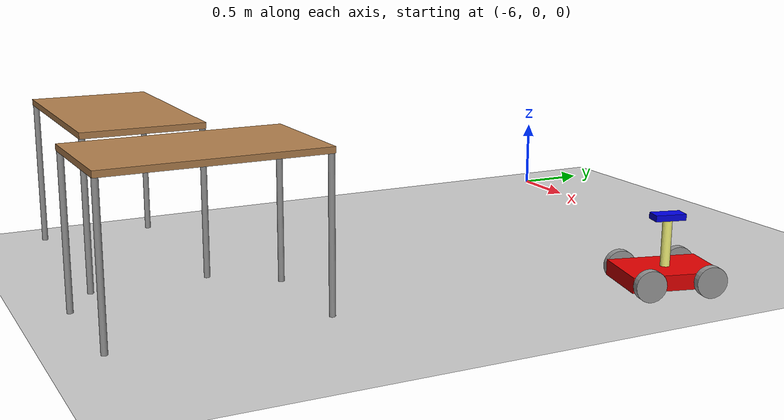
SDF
<sdf version="1.6">
 <world name="default">
  <model name="ground_plane">
   <static>1</static>
   <link name="link">
    <collision name="collision">
     <geometry><plane><normal>0 0 1</normal><size>100 100</size></plane></geometry>
     <surface><friction><ode><mu>100</mu><mu2>50</mu2></ode></friction></surface>
    </collision>
    <visual name="visual">
     <cast_shadows>0</cast_shadows>
     <geometry><plane><normal>0 0 1</normal><size>100 100</size></plane></geometry>
     <material>
      <script><uri>file://media/materials/scripts/gazebo.material</uri><name>Gazebo/Grey</name></script>
     </material>
    </visual>
   </link>
  </model>
  <model name="table_0_clone_clone_clone_0_clone_clone">
   <static>0</static>
   <link name="link">
    <collision name="surface">
     <pose>0 0 1 0 -0 0</pose>
     <geometry><box><size>1.5 0.8 0.03</size></box></geometry>
     <surface><friction><ode><mu>0.6</mu><mu2>0.6</mu2></ode></friction></surface>
    </collision>
    <visual name="visual1">
     <pose>0 0 1 0 -0 0</pose>
     <geometry><box><size>1.4 0.8 0.04</size></box></geometry>
     <material>
      <script><uri>file://media/materials/scripts/gazebo.material</uri><name>Gazebo/Wood</name></script>
     </material>
    </visual>
    <collision name="front_left_leg">
     <pose>0.68 0.38 0.5 0 -0 0</pose>
     <geometry><cylinder><radius>0.02</radius><length>1</length></cylinder></geometry>
    </collision>
    <visual name="front_left_leg">
     <pose>0.68 0.38 0.5 0 -0 0</pose>
     <geometry><cylinder><radius>0.02</radius><length>1</length></cylinder></geometry>
     <material>
      <script><uri>file://media/materials/scripts/gazebo.material</uri><name>Gazebo/Grey</name></script>
     </material>
    </visual>
    <collision name="front_right_leg">
     <pose>0.68 -0.38 0.5 0 -0 0</pose>
     <geometry><cylinder><radius>0.02</radius><length>1</length></cylinder></geometry>
    </collision>
    <visual name="front_right_leg">
     <pose>0.68 -0.38 0.5 0 -0 0</pose>
     <geometry><cylinder><radius>0.02</radius><length>1</length></cylinder></geometry>
     <material>
      <script><uri>file://media/materials/scripts/gazebo.material</uri><name>Gazebo/Grey</name></script>
     </material>
    </visual>
    <collision name="back_right_leg">
     <pose>-0.68 -0.38 0.5 0 -0 0</pose>
     <geometry><cylinder><radius>0.02</radius><length>1</length></cylinder></geometry>
    </collision>
    <visual name="back_right_leg">
     <pose>-0.68 -0.38 0.5 0 -0 0</pose>
     <geometry><cylinder><radius>0.02</radius><length>1</length></cylinder></geometry>
     <material>
      <script><uri>file://media/materials/scripts/gazebo.material</uri><name>Gazebo/Grey</name></script>
     </material>
    </visual>
    <collision name="back_left_leg">
     <pose>-0.68 0.38 0.5 0 -0 0</pose>
     <geometry><cylinder><radius>0.02</radius><length>1</length></cylinder></geometry>
    </collision>
    <visual name="back_left_leg">
     <pose>-0.68 0.38 0.5 0 -0 0</pose>
     <geometry><cylinder><radius>0.02</radius><length>1</length></cylinder></geometry>
     <material>
      <script><uri>file://media/materials/scripts/gazebo.material</uri><name>Gazebo/Grey</name></script>
     </material>
    </visual>
    <inertial>
     <inertia><ixx>1</ixx><ixy>0</ixy><ixz>0</ixz><iyy>1</iyy><iyz>0</iyz><izz>1</izz></inertia>
     <mass>1</mass>
    </inertial>
   </link>
   <pose>-3.9349 -3.66964 -9e-06 0 -1e-06 -1.55435</pose>
  </model>
  <model name="table_0_clone_clone_clone_clone_0">
   <static>0</static>
   <link name="link">
    <collision name="surface">
     <pose>0 0 1 0 -0 0</pose>
     <geometry><box><size>1.5 0.8 0.03</size></box></geometry>
     <surface><friction><ode><mu>0.6</mu><mu2>0.6</mu2></ode></friction></surface>
    </collision>
    <visual name="visual1">
     <pose>0 0 1 0 -0 0</pose>
     <geometry><box><size>1.4 0.8 0.04</size></box></geometry>
     <material>
      <script><uri>file://media/materials/scripts/gazebo.material</uri><name>Gazebo/Wood</name></script>
     </material>
    </visual>
    <collision name="front_left_leg">
     <pose>0.68 0.38 0.5 0 -0 0</pose>
     <geometry><cylinder><radius>0.02</radius><length>1</length></cylinder></geometry>
    </collision>
    <visual name="front_left_leg">
     <pose>0.68 0.38 0.5 0 -0 0</pose>
     <geometry><cylinder><radius>0.02</radius><length>1</length></cylinder></geometry>
     <material>
      <script><uri>file://media/materials/scripts/gazebo.material</uri><name>Gazebo/Grey</name></script>
     </material>
    </visual>
    <collision name="front_right_leg">
     <pose>0.68 -0.38 0.5 0 -0 0</pose>
     <geometry><cylinder><radius>0.02</radius><length>1</length></cylinder></geometry>
    </collision>
    <visual name="front_right_leg">
     <pose>0.68 -0.38 0.5 0 -0 0</pose>
     <geometry><cylinder><radius>0.02</radius><length>1</length></cylinder></geometry>
     <material>
      <script><uri>file://media/materials/scripts/gazebo.material</uri><name>Gazebo/Grey</name></script>
     </material>
    </visual>
    <collision name="back_right_leg">
     <pose>-0.68 -0.38 0.5 0 -0 0</pose>
     <geometry><cylinder><radius>0.02</radius><length>1</length></cylinder></geometry>
    </collision>
    <visual name="back_right_leg">
     <pose>-0.68 -0.38 0.5 0 -0 0</pose>
     <geometry><cylinder><radius>0.02</radius><length>1</length></cylinder></geometry>
     <material>
      <script><uri>file://media/materials/scripts/gazebo.material</uri><name>Gazebo/Grey</name></script>
     </material>
    </visual>
    <collision name="back_left_leg">
     <pose>-0.68 0.38 0.5 0 -0 0</pose>
     <geometry><cylinder><radius>0.02</radius><length>1</length></cylinder></geometry>
    </collision>
    <visual name="back_left_leg">
     <pose>-0.68 0.38 0.5 0 -0 0</pose>
     <geometry><cylinder><radius>0.02</radius><length>1</length></cylinder></geometry>
     <material>
      <script><uri>file://media/materials/scripts/gazebo.material</uri><name>Gazebo/Grey</name></script>
     </material>
    </visual>
    <inertial>
     <inertia><ixx>1</ixx><ixy>0</ixy><ixz>0</ixz><iyy>1</iyy><iyz>0</iyz><izz>1</izz></inertia>
     <mass>1</mass>
    </inertial>
   </link>
   <pose>-5.29449 -3.77784 -9e-06 0 -1e-06 0</pose>
  </model>
  <model name="MyInspectionRobot_clone">
   <link name="link_10">
    <pose>0 0 0.37 0 -0 0</pose>
    <inertial>
     <mass>1</mass>
     <inertia>
      <ixx>0.166667</ixx>
      <ixy>0</ixy>
      <ixz>0</ixz>
      <iyy>0.166667</iyy>
      <iyz>0</iyz>
      <izz>0.166667</izz>
     </inertia>
    </inertial>
    <visual name="visual">
     <geometry><box><size>0.2 0.1 0.04</size></box></geometry>
     <material>
      <lighting>1</lighting>
      <script><uri>file://media/materials/scripts/gazebo.material</uri><name>Gazebo/Grey</name></script>
      <ambient>0.3 0.3 0.3 1</ambient>
      <diffuse>0 0 0.9 1</diffuse>
      <specular>0.01 0.01 0.01 1</specular>
      <emissive>0 0 0 1</emissive>
      <shader type="vertex"><normal_map>__default__</normal_map></shader>
     </material>
    </visual>
    <collision name="collision">
     <geometry><box><size>0.2 0.1 0.04</size></box></geometry>
     <surface>
      <friction>
       <ode><mu>1</mu><mu2>1</mu2><fdir1>0 0 0</fdir1><slip1>0</slip1><slip2>0</slip2></ode>
       <torsional>
        <coefficient>1</coefficient>
        <patch_radius>0</patch_radius>
        <surface_radius>0</surface_radius>
        <use_patch_radius>1</use_patch_radius>
        <ode><slip>0</slip></ode>
       </torsional>
      </friction>
      <bounce><restitution_coefficient>0</restitution_coefficient><threshold>1e+06</threshold></bounce>
      <contact>
       <collide_without_contact>0</collide_without_contact>
       <collide_without_contact_bitmask>1</collide_without_contact_bitmask>
       <collide_bitmask>1</collide_bitmask>
       <ode>
        <soft_cfm>0</soft_cfm>
        <soft_erp>0.2</soft_erp>
        <kp>1e+13</kp>
        <kd>1</kd>
        <max_vel>0.01</max_vel>
        <min_depth>0</min_depth>
       </ode>
       <bullet>
        <split_impulse>1</split_impulse>
        <split_impulse_penetration_threshold>-0.01</split_impulse_penetration_threshold>
        <soft_cfm>0</soft_cfm>
        <soft_erp>0.2</soft_erp>
        <kp>1e+13</kp>
        <kd>1</kd>
       </bullet>
      </contact>
     </surface>
    </collision>
   </link>
   <link name="link_6">
    <inertial>
     <mass>1</mass>
     <inertia>
      <ixx>0.166667</ixx>
      <ixy>0</ixy>
      <ixz>0</ixz>
      <iyy>0.166667</iyy>
      <iyz>0</iyz>
      <izz>0.166667</izz>
     </inertia>
    </inertial>
    <visual name="visual">
     <geometry><box><size>0.6 0.4 0.1</size></box></geometry>
     <material>
      <lighting>1</lighting>
      <script><uri>file://media/materials/scripts/gazebo.material</uri><name>Gazebo/Grey</name></script>
      <ambient>0.3 0.3 0.3 1</ambient>
      <diffuse>0.9 0 0 1</diffuse>
      <specular>0.01 0.01 0.01 1</specular>
      <emissive>0 0 0 1</emissive>
      <shader type="vertex"><normal_map>__default__</normal_map></shader>
     </material>
    </visual>
    <collision name="collision">
     <geometry><box><size>0.6 0.4 0.1</size></box></geometry>
     <surface>
      <friction>
       <ode><mu>1</mu><mu2>1</mu2><fdir1>0 0 0</fdir1><slip1>0</slip1><slip2>0</slip2></ode>
       <torsional>
        <coefficient>1</coefficient>
        <patch_radius>0</patch_radius>
        <surface_radius>0</surface_radius>
        <use_patch_radius>1</use_patch_radius>
        <ode><slip>0</slip></ode>
       </torsional>
      </friction>
      <bounce><restitution_coefficient>0</restitution_coefficient><threshold>1e+06</threshold></bounce>
      <contact>
       <collide_without_contact>0</collide_without_contact>
       <collide_without_contact_bitmask>1</collide_without_contact_bitmask>
       <collide_bitmask>1</collide_bitmask>
       <ode>
        <soft_cfm>0</soft_cfm>
        <soft_erp>0.2</soft_erp>
        <kp>1e+13</kp>
        <kd>1</kd>
        <max_vel>0.01</max_vel>
        <min_depth>0</min_depth>
       </ode>
       <bullet>
        <split_impulse>1</split_impulse>
        <split_impulse_penetration_threshold>-0.01</split_impulse_penetration_threshold>
        <soft_cfm>0</soft_cfm>
        <soft_erp>0.2</soft_erp>
        <kp>1e+13</kp>
        <kd>1</kd>
       </bullet>
      </contact>
     </surface>
    </collision>
   </link>
   <link name="link_8">
    <pose>-0.2 -0.22501 0 1.5707 -0 0</pose>
    <inertial>
     <mass>1</mass>
     <inertia><ixx>0.145833</ixx><ixy>0</ixy><ixz>0</ixz><iyy>0.145833</iyy><iyz>0</iyz><izz>0.125</izz></inertia>
    </inertial>
    <visual name="visual">
     <geometry><cylinder><radius>0.1</radius><length>0.05</length></cylinder></geometry>
     <material>
      <lighting>1</lighting>
      <script><uri>file://media/materials/scripts/gazebo.material</uri><name>Gazebo/Grey</name></script>
      <ambient>0.3 0.3 0.3 1</ambient>
      <diffuse>0 0 0 1</diffuse>
      <specular>0.01 0.01 0.01 1</specular>
      <emissive>0 0 0 1</emissive>
      <shader type="vertex"><normal_map>__default__</normal_map></shader>
     </material>
    </visual>
    <collision name="collision">
     <geometry><cylinder><radius>0.1</radius><length>0.05</length></cylinder></geometry>
     <surface>
      <friction>
       <ode><mu>1</mu><mu2>1</mu2><fdir1>0 0 0</fdir1><slip1>0</slip1><slip2>0</slip2></ode>
       <torsional>
        <coefficient>1</coefficient>
        <patch_radius>0</patch_radius>
        <surface_radius>0</surface_radius>
        <use_patch_radius>1</use_patch_radius>
        <ode><slip>0</slip></ode>
       </torsional>
      </friction>
      <bounce><restitution_coefficient>0</restitution_coefficient><threshold>1e+06</threshold></bounce>
      <contact>
       <collide_without_contact>0</collide_without_contact>
       <collide_without_contact_bitmask>1</collide_without_contact_bitmask>
       <collide_bitmask>1</collide_bitmask>
       <ode>
        <soft_cfm>0</soft_cfm>
        <soft_erp>0.2</soft_erp>
        <kp>1e+13</kp>
        <kd>1</kd>
        <max_vel>0.01</max_vel>
        <min_depth>0</min_depth>
       </ode>
       <bullet>
        <split_impulse>1</split_impulse>
        <split_impulse_penetration_threshold>-0.01</split_impulse_penetration_threshold>
        <soft_cfm>0</soft_cfm>
        <soft_erp>0.2</soft_erp>
        <kp>1e+13</kp>
        <kd>1</kd>
       </bullet>
      </contact>
     </surface>
    </collision>
   </link>
   <link name="link_8_clone">
    <pose>-0.2 0.22501 0 1.5707 -0 0</pose>
    <inertial>
     <mass>1</mass>
     <inertia><ixx>0.145833</ixx><ixy>0</ixy><ixz>0</ixz><iyy>0.145833</iyy><iyz>0</iyz><izz>0.125</izz></inertia>
    </inertial>
    <visual name="visual">
     <geometry><cylinder><radius>0.1</radius><length>0.05</length></cylinder></geometry>
     <material>
      <lighting>1</lighting>
      <script><uri>file://media/materials/scripts/gazebo.material</uri><name>Gazebo/Grey</name></script>
      <ambient>0.3 0.3 0.3 1</ambient>
      <diffuse>0 0 0 1</diffuse>
      <specular>0.01 0.01 0.01 1</specular>
      <emissive>0 0 0 1</emissive>
      <shader type="vertex"><normal_map>__default__</normal_map></shader>
     </material>
    </visual>
    <collision name="collision">
     <geometry><cylinder><radius>0.1</radius><length>0.05</length></cylinder></geometry>
     <surface>
      <friction>
       <ode><mu>1</mu><mu2>1</mu2><fdir1>0 0 0</fdir1><slip1>0</slip1><slip2>0</slip2></ode>
       <torsional>
        <coefficient>1</coefficient>
        <patch_radius>0</patch_radius>
        <surface_radius>0</surface_radius>
        <use_patch_radius>1</use_patch_radius>
        <ode><slip>0</slip></ode>
       </torsional>
      </friction>
      <bounce><restitution_coefficient>0</restitution_coefficient><threshold>1e+06</threshold></bounce>
      <contact>
       <collide_without_contact>0</collide_without_contact>
       <collide_without_contact_bitmask>1</collide_without_contact_bitmask>
       <collide_bitmask>1</collide_bitmask>
       <ode>
        <soft_cfm>0</soft_cfm>
        <soft_erp>0.2</soft_erp>
        <kp>1e+13</kp>
        <kd>1</kd>
        <max_vel>0.01</max_vel>
        <min_depth>0</min_depth>
       </ode>
       <bullet>
        <split_impulse>1</split_impulse>
        <split_impulse_penetration_threshold>-0.01</split_impulse_penetration_threshold>
        <soft_cfm>0</soft_cfm>
        <soft_erp>0.2</soft_erp>
        <kp>1e+13</kp>
        <kd>1</kd>
       </bullet>
      </contact>
     </surface>
    </collision>
   </link>
   <link name="link_8_clone_clone">
    <pose>0.2 -0.22501 0 1.5707 -0 0</pose>
    <inertial>
     <mass>1</mass>
     <inertia><ixx>0.145833</ixx><ixy>0</ixy><ixz>0</ixz><iyy>0.145833</iyy><iyz>0</iyz><izz>0.125</izz></inertia>
    </inertial>
    <visual name="visual">
     <geometry><cylinder><radius>0.1</radius><length>0.05</length></cylinder></geometry>
     <material>
      <lighting>1</lighting>
      <script><uri>file://media/materials/scripts/gazebo.material</uri><name>Gazebo/Grey</name></script>
      <ambient>0.3 0.3 0.3 1</ambient>
      <diffuse>0 0 0 1</diffuse>
      <specular>0.01 0.01 0.01 1</specular>
      <emissive>0 0 0 1</emissive>
      <shader type="vertex"><normal_map>__default__</normal_map></shader>
     </material>
    </visual>
    <collision name="collision">
     <geometry><cylinder><radius>0.1</radius><length>0.05</length></cylinder></geometry>
     <surface>
      <friction>
       <ode><mu>1</mu><mu2>1</mu2><fdir1>0 0 0</fdir1><slip1>0</slip1><slip2>0</slip2></ode>
       <torsional>
        <coefficient>1</coefficient>
        <patch_radius>0</patch_radius>
        <surface_radius>0</surface_radius>
        <use_patch_radius>1</use_patch_radius>
        <ode><slip>0</slip></ode>
       </torsional>
      </friction>
      <bounce><restitution_coefficient>0</restitution_coefficient><threshold>1e+06</threshold></bounce>
      <contact>
       <collide_without_contact>0</collide_without_contact>
       <collide_without_contact_bitmask>1</collide_without_contact_bitmask>
       <collide_bitmask>1</collide_bitmask>
       <ode>
        <soft_cfm>0</soft_cfm>
        <soft_erp>0.2</soft_erp>
        <kp>1e+13</kp>
        <kd>1</kd>
        <max_vel>0.01</max_vel>
        <min_depth>0</min_depth>
       </ode>
       <bullet>
        <split_impulse>1</split_impulse>
        <split_impulse_penetration_threshold>-0.01</split_impulse_penetration_threshold>
        <soft_cfm>0</soft_cfm>
        <soft_erp>0.2</soft_erp>
        <kp>1e+13</kp>
        <kd>1</kd>
       </bullet>
      </contact>
     </surface>
    </collision>
   </link>
   <link name="link_8_clone_clone_clone">
    <pose>0.2 0.22501 0 1.5707 -0 0</pose>
    <inertial>
     <mass>1</mass>
     <inertia><ixx>0.145833</ixx><ixy>0</ixy><ixz>0</ixz><iyy>0.145833</iyy><iyz>0</iyz><izz>0.125</izz></inertia>
    </inertial>
    <visual name="visual">
     <geometry><cylinder><radius>0.1</radius><length>0.05</length></cylinder></geometry>
     <material>
      <lighting>1</lighting>
      <script><uri>file://media/materials/scripts/gazebo.material</uri><name>Gazebo/Grey</name></script>
      <ambient>0.3 0.3 0.3 1</ambient>
      <diffuse>0 0 0 1</diffuse>
      <specular>0.01 0.01 0.01 1</specular>
      <emissive>0 0 0 1</emissive>
      <shader type="vertex"><normal_map>__default__</normal_map></shader>
     </material>
    </visual>
    <collision name="collision">
     <geometry><cylinder><radius>0.1</radius><length>0.05</length></cylinder></geometry>
     <surface>
      <friction>
       <ode><mu>1</mu><mu2>1</mu2><fdir1>0 0 0</fdir1><slip1>0</slip1><slip2>0</slip2></ode>
       <torsional>
        <coefficient>1</coefficient>
        <patch_radius>0</patch_radius>
        <surface_radius>0</surface_radius>
        <use_patch_radius>1</use_patch_radius>
        <ode><slip>0</slip></ode>
       </torsional>
      </friction>
      <bounce><restitution_coefficient>0</restitution_coefficient><threshold>1e+06</threshold></bounce>
      <contact>
       <collide_without_contact>0</collide_without_contact>
       <collide_without_contact_bitmask>1</collide_without_contact_bitmask>
       <collide_bitmask>1</collide_bitmask>
       <ode>
        <soft_cfm>0</soft_cfm>
        <soft_erp>0.2</soft_erp>
        <kp>1e+13</kp>
        <kd>1</kd>
        <max_vel>0.01</max_vel>
        <min_depth>0</min_depth>
       </ode>
       <bullet>
        <split_impulse>1</split_impulse>
        <split_impulse_penetration_threshold>-0.01</split_impulse_penetration_threshold>
        <soft_cfm>0</soft_cfm>
        <soft_erp>0.2</soft_erp>
        <kp>1e+13</kp>
        <kd>1</kd>
       </bullet>
      </contact>
     </surface>
    </collision>
   </link>
   <link name="link_9">
    <pose>0 0 0.2 0 -0 0</pose>
    <inertial>
     <mass>1</mass>
     <inertia><ixx>0.145833</ixx><ixy>0</ixy><ixz>0</ixz><iyy>0.145833</iyy><iyz>0</iyz><izz>0.125</izz></inertia>
    </inertial>
    <visual name="visual">
     <geometry><cylinder><radius>0.03</radius><length>0.3</length></cylinder></geometry>
     <material>
      <lighting>1</lighting>
      <script><uri>file://media/materials/scripts/gazebo.material</uri><name>Gazebo/Grey</name></script>
      <ambient>0.3 0.3 0.3 1</ambient>
      <diffuse>1 1 0.5 1</diffuse>
      <specular>0.01 0.01 0.01 1</specular>
      <emissive>0 0 0 1</emissive>
      <shader type="vertex"><normal_map>__default__</normal_map></shader>
     </material>
    </visual>
    <collision name="collision">
     <geometry><cylinder><radius>0.03</radius><length>0.3</length></cylinder></geometry>
     <surface>
      <friction>
       <ode><mu>1</mu><mu2>1</mu2><fdir1>0 0 0</fdir1><slip1>0</slip1><slip2>0</slip2></ode>
       <torsional>
        <coefficient>1</coefficient>
        <patch_radius>0</patch_radius>
        <surface_radius>0</surface_radius>
        <use_patch_radius>1</use_patch_radius>
        <ode><slip>0</slip></ode>
       </torsional>
      </friction>
      <bounce><restitution_coefficient>0</restitution_coefficient><threshold>1e+06</threshold></bounce>
      <contact>
       <collide_without_contact>0</collide_without_contact>
       <collide_without_contact_bitmask>1</collide_without_contact_bitmask>
       <collide_bitmask>1</collide_bitmask>
       <ode>
        <soft_cfm>0</soft_cfm>
        <soft_erp>0.2</soft_erp>
        <kp>1e+13</kp>
        <kd>1</kd>
        <max_vel>0.01</max_vel>
        <min_depth>0</min_depth>
       </ode>
       <bullet>
        <split_impulse>1</split_impulse>
        <split_impulse_penetration_threshold>-0.01</split_impulse_penetration_threshold>
        <soft_cfm>0</soft_cfm>
        <soft_erp>0.2</soft_erp>
        <kp>1e+13</kp>
        <kd>1</kd>
       </bullet>
      </contact>
     </surface>
    </collision>
   </link>
   <joint name="link_6_JOINT_1" type="revolute">
    <parent>link_6</parent>
    <child>link_8</child>
    <axis>
     <xyz>0 0 1</xyz>
     <use_parent_model_frame>0</use_parent_model_frame>
     <limit>
      <lower>-1.79769e+308</lower>
      <upper>1.79769e+308</upper>
      <effort>-1</effort>
      <velocity>-1</velocity>
     </limit>
     <dynamics>
      <spring_reference>0</spring_reference>
      <spring_stiffness>0</spring_stiffness>
      <damping>0</damping>
     </dynamics>
    </axis>
    <physics>
     <ode><limit><cfm>0</cfm><erp>0.2</erp></limit><suspension><cfm>0</cfm><erp>0.2</erp></suspension></ode>
    </physics>
   </joint>
   <joint name="link_6_JOINT_2" type="revolute">
    <parent>link_6</parent>
    <child>link_8_clone</child>
    <axis>
     <xyz>0 0 1</xyz>
     <use_parent_model_frame>0</use_parent_model_frame>
     <limit>
      <lower>-1.79769e+308</lower>
      <upper>1.79769e+308</upper>
      <effort>-1</effort>
      <velocity>-1</velocity>
     </limit>
     <dynamics>
      <spring_reference>0</spring_reference>
      <spring_stiffness>0</spring_stiffness>
      <damping>0</damping>
     </dynamics>
    </axis>
    <physics>
     <ode><limit><cfm>0</cfm><erp>0.2</erp></limit><suspension><cfm>0</cfm><erp>0.2</erp></suspension></ode>
    </physics>
   </joint>
   <joint name="link_6_JOINT_3" type="revolute">
    <parent>link_6</parent>
    <child>link_8_clone_clone</child>
    <axis>
     <xyz>0 0 1</xyz>
     <use_parent_model_frame>0</use_parent_model_frame>
     <limit>
      <lower>-1.79769e+308</lower>
      <upper>1.79769e+308</upper>
      <effort>-1</effort>
      <velocity>-1</velocity>
     </limit>
     <dynamics>
      <spring_reference>0</spring_reference>
      <spring_stiffness>0</spring_stiffness>
      <damping>0</damping>
     </dynamics>
    </axis>
    <physics>
     <ode><limit><cfm>0</cfm><erp>0.2</erp></limit><suspension><cfm>0</cfm><erp>0.2</erp></suspension></ode>
    </physics>
   </joint>
   <joint name="link_6_JOINT_4" type="revolute">
    <parent>link_6</parent>
    <child>link_8_clone_clone_clone</child>
    <axis>
     <xyz>0 0 1</xyz>
     <use_parent_model_frame>0</use_parent_model_frame>
     <limit>
      <lower>-1.79769e+308</lower>
      <upper>1.79769e+308</upper>
      <effort>-1</effort>
      <velocity>-1</velocity>
     </limit>
     <dynamics>
      <spring_reference>0</spring_reference>
      <spring_stiffness>0</spring_stiffness>
      <damping>0</damping>
     </dynamics>
    </axis>
    <physics>
     <ode><limit><cfm>0</cfm><erp>0.2</erp></limit><suspension><cfm>0</cfm><erp>0.2</erp></suspension></ode>
    </physics>
   </joint>
   <joint name="link_6_JOINT_5" type="revolute">
    <parent>link_6</parent>
    <child>link_9</child>
    <pose>0 0 -0.15 0 -0 0</pose>
    <axis>
     <xyz>0 0 1</xyz>
     <use_parent_model_frame>0</use_parent_model_frame>
     <limit>
      <lower>-1.79769e+308</lower>
      <upper>1.79769e+308</upper>
      <effort>-1</effort>
      <velocity>-1</velocity>
     </limit>
     <dynamics>
      <spring_reference>0</spring_reference>
      <spring_stiffness>0</spring_stiffness>
      <damping>0</damping>
     </dynamics>
    </axis>
    <physics>
     <ode><limit><cfm>0</cfm><erp>0.2</erp></limit><suspension><cfm>0</cfm><erp>0.2</erp></suspension></ode>
    </physics>
   </joint>
   <joint name="link_9_JOINT_7" type="revolute">
    <parent>link_9</parent>
    <child>link_10</child>
    <pose>0 0 -0.02 0 -0 0</pose>
    <axis>
     <xyz>0 0 1</xyz>
     <use_parent_model_frame>0</use_parent_model_frame>
     <limit>
      <lower>-1.79769e+308</lower>
      <upper>1.79769e+308</upper>
      <effort>-1</effort>
      <velocity>-1</velocity>
     </limit>
     <dynamics>
      <spring_reference>0</spring_reference>
      <spring_stiffness>0</spring_stiffness>
      <damping>0</damping>
     </dynamics>
    </axis>
    <physics>
     <ode><limit><cfm>0</cfm><erp>0.2</erp></limit><suspension><cfm>0</cfm><erp>0.2</erp></suspension></ode>
    </physics>
   </joint>
   <static>0</static>
   <pose>-3.12681 -0.891166 0.100003 -5e-06 -7e-06 -1.81389</pose>
  </model>
 </world>
</sdf>
